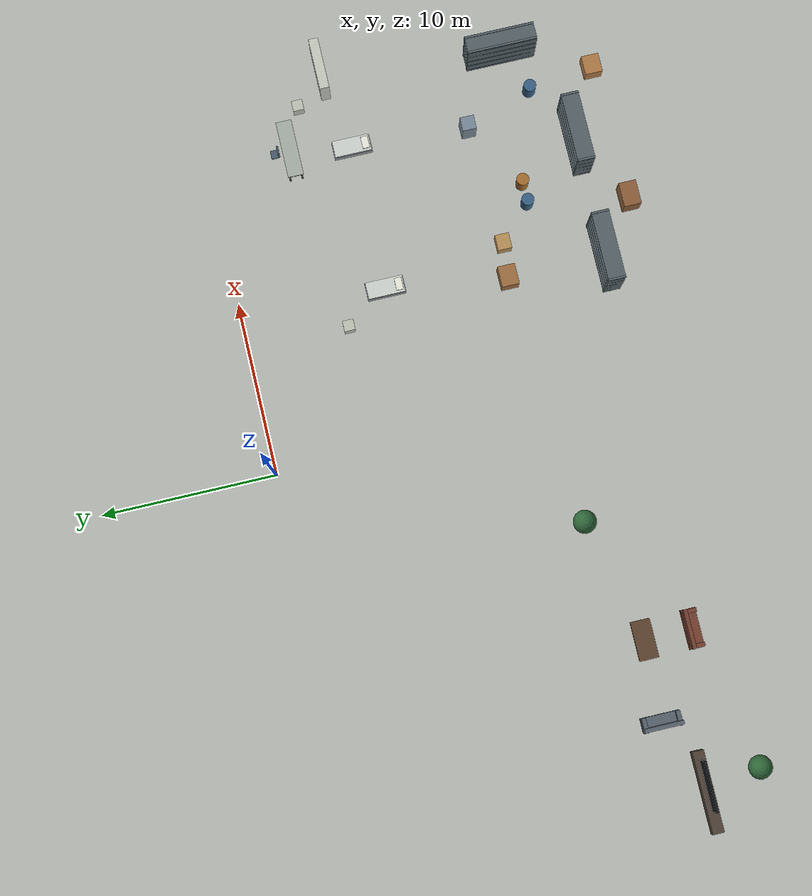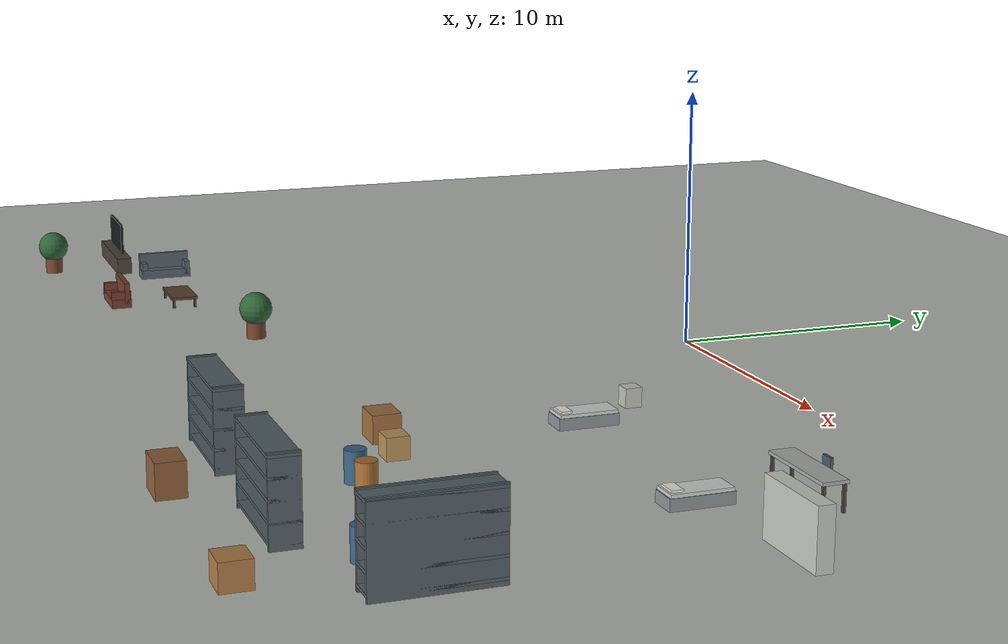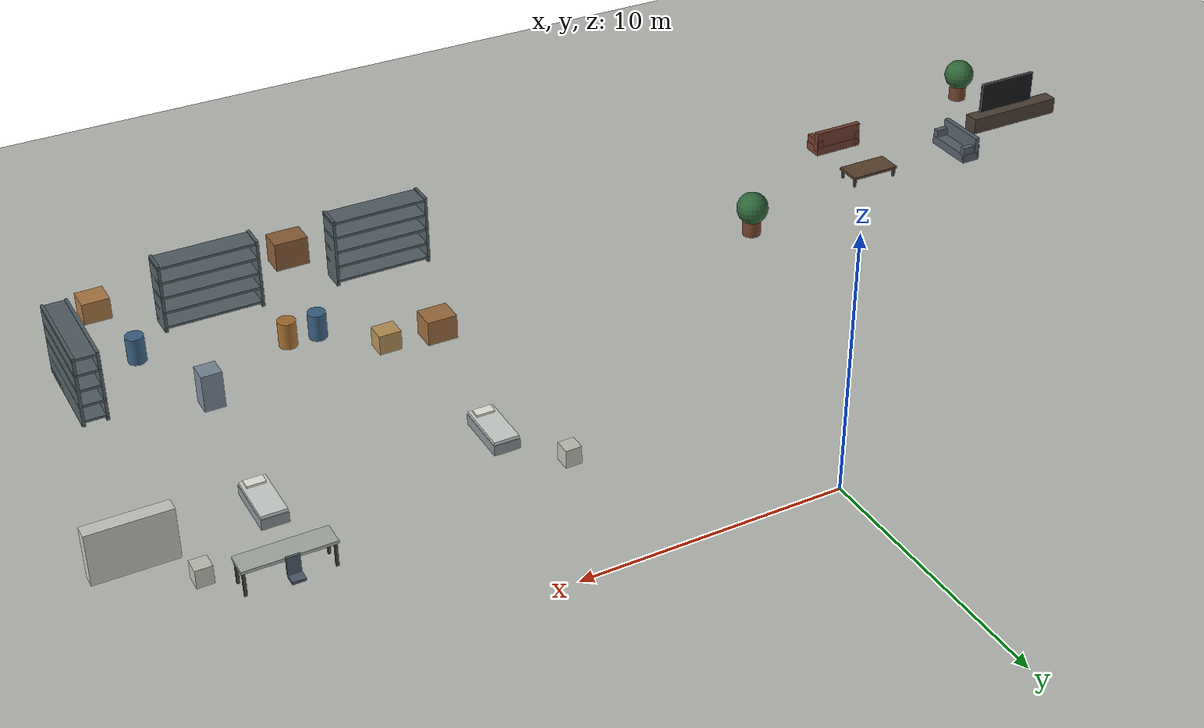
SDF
<sdf version="1.9">
 <world name="default">
  <model name="ground">
   <static>true</static>
   <link name="ground_link">
    <collision name="ground_collision">
     <geometry><plane><normal>0 0 1</normal><size>50 50</size></plane></geometry>
    </collision>
    <visual name="ground_visual">
     <geometry><plane><normal>0 0 1</normal><size>50 50</size></plane></geometry>
     <material><ambient>0.72 0.73 0.71 1</ambient><diffuse>0.72 0.73 0.71 1</diffuse></material>
    </visual>
   </link>
  </model>
  <model name="lounge_furniture">
   <static>true</static>
   <link name="lounge_sofa_a_seat">
    <pose>-13.500 -20.400 0.400 0 0 0.0000</pose>
    <collision name="collision"><geometry><box><size>2.200 0.820 0.380</size></box></geometry></collision>
    <visual name="visual">
     <geometry><box><size>2.200 0.820 0.380</size></box></geometry>
     <material><ambient>0.45 0.24 0.18 1</ambient><diffuse>0.45 0.24 0.18 1</diffuse></material>
    </visual>
   </link>
   <link name="lounge_sofa_a_back">
    <pose>-13.500 -20.150 0.830 0 0 0.0000</pose>
    <collision name="collision"><geometry><box><size>2.200 0.220 0.860</size></box></geometry></collision>
    <visual name="visual">
     <geometry><box><size>2.200 0.220 0.860</size></box></geometry>
     <material><ambient>0.45 0.24 0.18 1</ambient><diffuse>0.45 0.24 0.18 1</diffuse></material>
    </visual>
   </link>
   <link name="lounge_sofa_a_arm_l">
    <pose>-14.460 -20.400 0.620 0 0 0.0000</pose>
    <collision name="collision"><geometry><box><size>0.240 0.820 0.580</size></box></geometry></collision>
    <visual name="visual">
     <geometry><box><size>0.240 0.820 0.580</size></box></geometry>
     <material><ambient>0.45 0.24 0.18 1</ambient><diffuse>0.45 0.24 0.18 1</diffuse></material>
    </visual>
   </link>
   <link name="lounge_sofa_a_arm_r">
    <pose>-12.540 -20.400 0.620 0 0 0.0000</pose>
    <collision name="collision"><geometry><box><size>0.240 0.820 0.580</size></box></geometry></collision>
    <visual name="visual">
     <geometry><box><size>0.240 0.820 0.580</size></box></geometry>
     <material><ambient>0.45 0.24 0.18 1</ambient><diffuse>0.45 0.24 0.18 1</diffuse></material>
    </visual>
   </link>
   <link name="lounge_sofa_b_seat">
    <pose>-18.000 -17.500 0.400 0 0 1.5708</pose>
    <collision name="collision"><geometry><box><size>2.200 0.820 0.380</size></box></geometry></collision>
    <visual name="visual">
     <geometry><box><size>2.200 0.820 0.380</size></box></geometry>
     <material><ambient>0.34 0.38 0.42 1</ambient><diffuse>0.34 0.38 0.42 1</diffuse></material>
    </visual>
   </link>
   <link name="lounge_sofa_b_back">
    <pose>-18.250 -17.500 0.830 0 0 1.5708</pose>
    <collision name="collision"><geometry><box><size>2.200 0.220 0.860</size></box></geometry></collision>
    <visual name="visual">
     <geometry><box><size>2.200 0.220 0.860</size></box></geometry>
     <material><ambient>0.34 0.38 0.42 1</ambient><diffuse>0.34 0.38 0.42 1</diffuse></material>
    </visual>
   </link>
   <link name="lounge_sofa_b_arm_l">
    <pose>-18.000 -18.460 0.620 0 0 1.5708</pose>
    <collision name="collision"><geometry><box><size>0.240 0.820 0.580</size></box></geometry></collision>
    <visual name="visual">
     <geometry><box><size>0.240 0.820 0.580</size></box></geometry>
     <material><ambient>0.34 0.38 0.42 1</ambient><diffuse>0.34 0.38 0.42 1</diffuse></material>
    </visual>
   </link>
   <link name="lounge_sofa_b_arm_r">
    <pose>-18.000 -16.540 0.620 0 0 1.5708</pose>
    <collision name="collision"><geometry><box><size>0.240 0.820 0.580</size></box></geometry></collision>
    <visual name="visual">
     <geometry><box><size>0.240 0.820 0.580</size></box></geometry>
     <material><ambient>0.34 0.38 0.42 1</ambient><diffuse>0.34 0.38 0.42 1</diffuse></material>
    </visual>
   </link>
   <link name="lounge_coffee_table_top">
    <pose>-13.500 -17.700 0.420 0 0 0.0000</pose>
    <collision name="collision"><geometry><box><size>2.200 1.100 0.120</size></box></geometry></collision>
    <visual name="visual">
     <geometry><box><size>2.200 1.100 0.120</size></box></geometry>
     <material><ambient>0.36 0.26 0.18 1</ambient><diffuse>0.36 0.26 0.18 1</diffuse></material>
    </visual>
   </link>
   <link name="lounge_coffee_table_leg_0_0">
    <pose>-14.500 -18.150 0.180 0 0 0.0000</pose>
    <collision name="collision"><geometry><box><size>0.100 0.100 0.360</size></box></geometry></collision>
    <visual name="visual">
     <geometry><box><size>0.100 0.100 0.360</size></box></geometry>
     <material><ambient>0.30 0.28 0.25 1</ambient><diffuse>0.30 0.28 0.25 1</diffuse></material>
    </visual>
   </link>
   <link name="lounge_coffee_table_leg_0_1">
    <pose>-14.500 -17.250 0.180 0 0 0.0000</pose>
    <collision name="collision"><geometry><box><size>0.100 0.100 0.360</size></box></geometry></collision>
    <visual name="visual">
     <geometry><box><size>0.100 0.100 0.360</size></box></geometry>
     <material><ambient>0.30 0.28 0.25 1</ambient><diffuse>0.30 0.28 0.25 1</diffuse></material>
    </visual>
   </link>
   <link name="lounge_coffee_table_leg_1_0">
    <pose>-12.500 -18.150 0.180 0 0 0.0000</pose>
    <collision name="collision"><geometry><box><size>0.100 0.100 0.360</size></box></geometry></collision>
    <visual name="visual">
     <geometry><box><size>0.100 0.100 0.360</size></box></geometry>
     <material><ambient>0.30 0.28 0.25 1</ambient><diffuse>0.30 0.28 0.25 1</diffuse></material>
    </visual>
   </link>
   <link name="lounge_coffee_table_leg_1_1">
    <pose>-12.500 -17.250 0.180 0 0 0.0000</pose>
    <collision name="collision"><geometry><box><size>0.100 0.100 0.360</size></box></geometry></collision>
    <visual name="visual">
     <geometry><box><size>0.100 0.100 0.360</size></box></geometry>
     <material><ambient>0.30 0.28 0.25 1</ambient><diffuse>0.30 0.28 0.25 1</diffuse></material>
    </visual>
   </link>
   <link name="lounge_media_console">
    <pose>-22.200 -19.000 0.360 0 0 1.5708</pose>
    <collision name="collision"><geometry><box><size>0.650 4.500 0.720</size></box></geometry></collision>
    <visual name="visual">
     <geometry><box><size>0.650 4.500 0.720</size></box></geometry>
     <material><ambient>0.30 0.25 0.21 1</ambient><diffuse>0.30 0.25 0.21 1</diffuse></material>
    </visual>
   </link>
   <link name="lounge_screen">
    <pose>-21.800 -19.000 1.550 0 0 1.5708</pose>
    <collision name="collision"><geometry><box><size>0.120 2.800 1.350</size></box></geometry></collision>
    <visual name="visual">
     <geometry><box><size>0.120 2.800 1.350</size></box></geometry>
     <material><ambient>0.08 0.09 0.10 1</ambient><diffuse>0.08 0.09 0.10 1</diffuse></material>
    </visual>
   </link>
   <link name="lounge_planter_0">
    <pose>-6.500 -16.000 0.350 0 0 0.0000</pose>
    <collision name="collision">
     <geometry><cylinder><radius>0.380</radius><length>0.700</length></cylinder></geometry>
    </collision>
    <visual name="visual">
     <geometry><cylinder><radius>0.380</radius><length>0.700</length></cylinder></geometry>
     <material><ambient>0.45 0.26 0.17 1</ambient><diffuse>0.45 0.26 0.17 1</diffuse></material>
    </visual>
   </link>
   <link name="lounge_plant_0">
    <pose>-6.500 -16.000 1.200 0 0 0.0000</pose>
    <collision name="collision"><geometry><sphere><radius>0.660</radius></sphere></geometry></collision>
    <visual name="visual">
     <geometry><sphere><radius>0.660</radius></sphere></geometry>
     <material><ambient>0.18 0.40 0.22 1</ambient><diffuse>0.18 0.40 0.22 1</diffuse></material>
    </visual>
   </link>
   <link name="lounge_planter_1">
    <pose>-21.500 -22.000 0.350 0 0 0.0000</pose>
    <collision name="collision">
     <geometry><cylinder><radius>0.380</radius><length>0.700</length></cylinder></geometry>
    </collision>
    <visual name="visual">
     <geometry><cylinder><radius>0.380</radius><length>0.700</length></cylinder></geometry>
     <material><ambient>0.45 0.26 0.17 1</ambient><diffuse>0.45 0.26 0.17 1</diffuse></material>
    </visual>
   </link>
   <link name="lounge_plant_1">
    <pose>-21.500 -22.000 1.200 0 0 0.0000</pose>
    <collision name="collision"><geometry><sphere><radius>0.660</radius></sphere></geometry></collision>
    <visual name="visual">
     <geometry><sphere><radius>0.660</radius></sphere></geometry>
     <material><ambient>0.18 0.40 0.22 1</ambient><diffuse>0.18 0.40 0.22 1</diffuse></material>
    </visual>
   </link>
  </model>
  <model name="clinic_furniture">
   <static>true</static>
   <link name="clinic_bed_a_frame">
    <pose>9.000 -8.300 0.280 0 0 0.0000</pose>
    <collision name="collision"><geometry><box><size>1.000 2.200 0.420</size></box></geometry></collision>
    <visual name="visual">
     <geometry><box><size>1.000 2.200 0.420</size></box></geometry>
     <material><ambient>0.55 0.58 0.60 1</ambient><diffuse>0.55 0.58 0.60 1</diffuse></material>
    </visual>
   </link>
   <link name="clinic_bed_a_mattress">
    <pose>9.000 -8.300 0.530 0 0 0.0000</pose>
    <collision name="collision"><geometry><box><size>0.960 2.120 0.160</size></box></geometry></collision>
    <visual name="visual">
     <geometry><box><size>0.960 2.120 0.160</size></box></geometry>
     <material><ambient>0.82 0.84 0.82 1</ambient><diffuse>0.82 0.84 0.82 1</diffuse></material>
    </visual>
   </link>
   <link name="clinic_bed_a_pillow">
    <pose>9.000 -9.080 0.640 0 0 0.0000</pose>
    <collision name="collision"><geometry><box><size>0.700 0.400 0.100</size></box></geometry></collision>
    <visual name="visual">
     <geometry><box><size>0.700 0.400 0.100</size></box></geometry>
     <material><ambient>0.93 0.93 0.88 1</ambient><diffuse>0.93 0.93 0.88 1</diffuse></material>
    </visual>
   </link>
   <link name="clinic_bed_b_frame">
    <pose>17.500 -8.300 0.280 0 0 0.0000</pose>
    <collision name="collision"><geometry><box><size>1.000 2.200 0.420</size></box></geometry></collision>
    <visual name="visual">
     <geometry><box><size>1.000 2.200 0.420</size></box></geometry>
     <material><ambient>0.55 0.58 0.60 1</ambient><diffuse>0.55 0.58 0.60 1</diffuse></material>
    </visual>
   </link>
   <link name="clinic_bed_b_mattress">
    <pose>17.500 -8.300 0.530 0 0 0.0000</pose>
    <collision name="collision"><geometry><box><size>0.960 2.120 0.160</size></box></geometry></collision>
    <visual name="visual">
     <geometry><box><size>0.960 2.120 0.160</size></box></geometry>
     <material><ambient>0.82 0.84 0.82 1</ambient><diffuse>0.82 0.84 0.82 1</diffuse></material>
    </visual>
   </link>
   <link name="clinic_bed_b_pillow">
    <pose>17.500 -9.080 0.640 0 0 0.0000</pose>
    <collision name="collision"><geometry><box><size>0.700 0.400 0.100</size></box></geometry></collision>
    <visual name="visual">
     <geometry><box><size>0.700 0.400 0.100</size></box></geometry>
     <material><ambient>0.93 0.93 0.88 1</ambient><diffuse>0.93 0.93 0.88 1</diffuse></material>
    </visual>
   </link>
   <link name="clinic_supply_cabinet">
    <pose>22.200 -7.500 1.000 0 0 1.5708</pose>
    <collision name="collision"><geometry><box><size>0.550 3.000 2.000</size></box></geometry></collision>
    <visual name="visual">
     <geometry><box><size>0.550 3.000 2.000</size></box></geometry>
     <material><ambient>0.78 0.80 0.76 1</ambient><diffuse>0.78 0.80 0.76 1</diffuse></material>
    </visual>
   </link>
   <link name="clinic_reception_desk_top">
    <pose>18.000 -4.800 0.990 0 0 0.0000</pose>
    <collision name="collision"><geometry><box><size>3.300 0.900 0.120</size></box></geometry></collision>
    <visual name="visual">
     <geometry><box><size>3.300 0.900 0.120</size></box></geometry>
     <material><ambient>0.66 0.69 0.66 1</ambient><diffuse>0.66 0.69 0.66 1</diffuse></material>
    </visual>
   </link>
   <link name="clinic_reception_desk_leg_0_0">
    <pose>16.450 -5.150 0.465 0 0 0.0000</pose>
    <collision name="collision"><geometry><box><size>0.100 0.100 0.930</size></box></geometry></collision>
    <visual name="visual">
     <geometry><box><size>0.100 0.100 0.930</size></box></geometry>
     <material><ambient>0.30 0.28 0.25 1</ambient><diffuse>0.30 0.28 0.25 1</diffuse></material>
    </visual>
   </link>
   <link name="clinic_reception_desk_leg_0_1">
    <pose>16.450 -4.450 0.465 0 0 0.0000</pose>
    <collision name="collision"><geometry><box><size>0.100 0.100 0.930</size></box></geometry></collision>
    <visual name="visual">
     <geometry><box><size>0.100 0.100 0.930</size></box></geometry>
     <material><ambient>0.30 0.28 0.25 1</ambient><diffuse>0.30 0.28 0.25 1</diffuse></material>
    </visual>
   </link>
   <link name="clinic_reception_desk_leg_1_0">
    <pose>19.550 -5.150 0.465 0 0 0.0000</pose>
    <collision name="collision"><geometry><box><size>0.100 0.100 0.930</size></box></geometry></collision>
    <visual name="visual">
     <geometry><box><size>0.100 0.100 0.930</size></box></geometry>
     <material><ambient>0.30 0.28 0.25 1</ambient><diffuse>0.30 0.28 0.25 1</diffuse></material>
    </visual>
   </link>
   <link name="clinic_reception_desk_leg_1_1">
    <pose>19.550 -4.450 0.465 0 0 0.0000</pose>
    <collision name="collision"><geometry><box><size>0.100 0.100 0.930</size></box></geometry></collision>
    <visual name="visual">
     <geometry><box><size>0.100 0.100 0.930</size></box></geometry>
     <material><ambient>0.30 0.28 0.25 1</ambient><diffuse>0.30 0.28 0.25 1</diffuse></material>
    </visual>
   </link>
   <link name="clinic_chair_seat">
    <pose>18.000 -3.900 0.520 0 0 3.1416</pose>
    <collision name="collision"><geometry><box><size>0.480 0.460 0.100</size></box></geometry></collision>
    <visual name="visual">
     <geometry><box><size>0.480 0.460 0.100</size></box></geometry>
     <material><ambient>0.30 0.36 0.42 1</ambient><diffuse>0.30 0.36 0.42 1</diffuse></material>
    </visual>
   </link>
   <link name="clinic_chair_back">
    <pose>18.000 -4.120 0.910 0 0 3.1416</pose>
    <collision name="collision"><geometry><box><size>0.480 0.100 0.680</size></box></geometry></collision>
    <visual name="visual">
     <geometry><box><size>0.480 0.100 0.680</size></box></geometry>
     <material><ambient>0.30 0.36 0.42 1</ambient><diffuse>0.30 0.36 0.42 1</diffuse></material>
    </visual>
   </link>
   <link name="clinic_bedside_0">
    <pose>7.300 -5.800 0.360 0 0 0.0000</pose>
    <collision name="collision"><geometry><box><size>0.620 0.620 0.720</size></box></geometry></collision>
    <visual name="visual">
     <geometry><box><size>0.620 0.620 0.720</size></box></geometry>
     <material><ambient>0.76 0.77 0.72 1</ambient><diffuse>0.76 0.77 0.72 1</diffuse></material>
    </visual>
   </link>
   <link name="clinic_bedside_1">
    <pose>20.500 -5.800 0.360 0 0 0.0000</pose>
    <collision name="collision"><geometry><box><size>0.620 0.620 0.720</size></box></geometry></collision>
    <visual name="visual">
     <geometry><box><size>0.620 0.620 0.720</size></box></geometry>
     <material><ambient>0.76 0.77 0.72 1</ambient><diffuse>0.76 0.77 0.72 1</diffuse></material>
    </visual>
   </link>
  </model>
  <model name="warehouse_furniture">
   <static>true</static>
   <link name="warehouse_rack_0_shelf_0">
    <pose>8.000 -20.800 0.200 0 0 0.0000</pose>
    <collision name="collision"><geometry><box><size>4.000 1.000 0.100</size></box></geometry></collision>
    <visual name="visual">
     <geometry><box><size>4.000 1.000 0.100</size></box></geometry>
     <material><ambient>0.33 0.38 0.40 1</ambient><diffuse>0.33 0.38 0.40 1</diffuse></material>
    </visual>
   </link>
   <link name="warehouse_rack_0_shelf_1">
    <pose>8.000 -20.800 0.850 0 0 0.0000</pose>
    <collision name="collision"><geometry><box><size>4.000 1.000 0.100</size></box></geometry></collision>
    <visual name="visual">
     <geometry><box><size>4.000 1.000 0.100</size></box></geometry>
     <material><ambient>0.33 0.38 0.40 1</ambient><diffuse>0.33 0.38 0.40 1</diffuse></material>
    </visual>
   </link>
   <link name="warehouse_rack_0_shelf_2">
    <pose>8.000 -20.800 1.500 0 0 0.0000</pose>
    <collision name="collision"><geometry><box><size>4.000 1.000 0.100</size></box></geometry></collision>
    <visual name="visual">
     <geometry><box><size>4.000 1.000 0.100</size></box></geometry>
     <material><ambient>0.33 0.38 0.40 1</ambient><diffuse>0.33 0.38 0.40 1</diffuse></material>
    </visual>
   </link>
   <link name="warehouse_rack_0_shelf_3">
    <pose>8.000 -20.800 2.150 0 0 0.0000</pose>
    <collision name="collision"><geometry><box><size>4.000 1.000 0.100</size></box></geometry></collision>
    <visual name="visual">
     <geometry><box><size>4.000 1.000 0.100</size></box></geometry>
     <material><ambient>0.33 0.38 0.40 1</ambient><diffuse>0.33 0.38 0.40 1</diffuse></material>
    </visual>
   </link>
   <link name="warehouse_rack_0_shelf_4">
    <pose>8.000 -20.800 2.800 0 0 0.0000</pose>
    <collision name="collision"><geometry><box><size>4.000 1.000 0.100</size></box></geometry></collision>
    <visual name="visual">
     <geometry><box><size>4.000 1.000 0.100</size></box></geometry>
     <material><ambient>0.33 0.38 0.40 1</ambient><diffuse>0.33 0.38 0.40 1</diffuse></material>
    </visual>
   </link>
   <link name="warehouse_rack_0_side_0">
    <pose>6.060 -20.800 1.450 0 0 0.0000</pose>
    <collision name="collision"><geometry><box><size>0.120 1.000 2.900</size></box></geometry></collision>
    <visual name="visual">
     <geometry><box><size>0.120 1.000 2.900</size></box></geometry>
     <material><ambient>0.33 0.38 0.40 1</ambient><diffuse>0.33 0.38 0.40 1</diffuse></material>
    </visual>
   </link>
   <link name="warehouse_rack_0_side_1">
    <pose>9.940 -20.800 1.450 0 0 0.0000</pose>
    <collision name="collision"><geometry><box><size>0.120 1.000 2.900</size></box></geometry></collision>
    <visual name="visual">
     <geometry><box><size>0.120 1.000 2.900</size></box></geometry>
     <material><ambient>0.33 0.38 0.40 1</ambient><diffuse>0.33 0.38 0.40 1</diffuse></material>
    </visual>
   </link>
   <link name="warehouse_rack_1_shelf_0">
    <pose>15.000 -20.800 0.200 0 0 0.0000</pose>
    <collision name="collision"><geometry><box><size>4.000 1.000 0.100</size></box></geometry></collision>
    <visual name="visual">
     <geometry><box><size>4.000 1.000 0.100</size></box></geometry>
     <material><ambient>0.33 0.38 0.40 1</ambient><diffuse>0.33 0.38 0.40 1</diffuse></material>
    </visual>
   </link>
   <link name="warehouse_rack_1_shelf_1">
    <pose>15.000 -20.800 0.850 0 0 0.0000</pose>
    <collision name="collision"><geometry><box><size>4.000 1.000 0.100</size></box></geometry></collision>
    <visual name="visual">
     <geometry><box><size>4.000 1.000 0.100</size></box></geometry>
     <material><ambient>0.33 0.38 0.40 1</ambient><diffuse>0.33 0.38 0.40 1</diffuse></material>
    </visual>
   </link>
   <link name="warehouse_rack_1_shelf_2">
    <pose>15.000 -20.800 1.500 0 0 0.0000</pose>
    <collision name="collision"><geometry><box><size>4.000 1.000 0.100</size></box></geometry></collision>
    <visual name="visual">
     <geometry><box><size>4.000 1.000 0.100</size></box></geometry>
     <material><ambient>0.33 0.38 0.40 1</ambient><diffuse>0.33 0.38 0.40 1</diffuse></material>
    </visual>
   </link>
   <link name="warehouse_rack_1_shelf_3">
    <pose>15.000 -20.800 2.150 0 0 0.0000</pose>
    <collision name="collision"><geometry><box><size>4.000 1.000 0.100</size></box></geometry></collision>
    <visual name="visual">
     <geometry><box><size>4.000 1.000 0.100</size></box></geometry>
     <material><ambient>0.33 0.38 0.40 1</ambient><diffuse>0.33 0.38 0.40 1</diffuse></material>
    </visual>
   </link>
   <link name="warehouse_rack_1_shelf_4">
    <pose>15.000 -20.800 2.800 0 0 0.0000</pose>
    <collision name="collision"><geometry><box><size>4.000 1.000 0.100</size></box></geometry></collision>
    <visual name="visual">
     <geometry><box><size>4.000 1.000 0.100</size></box></geometry>
     <material><ambient>0.33 0.38 0.40 1</ambient><diffuse>0.33 0.38 0.40 1</diffuse></material>
    </visual>
   </link>
   <link name="warehouse_rack_1_side_0">
    <pose>13.060 -20.800 1.450 0 0 0.0000</pose>
    <collision name="collision"><geometry><box><size>0.120 1.000 2.900</size></box></geometry></collision>
    <visual name="visual">
     <geometry><box><size>0.120 1.000 2.900</size></box></geometry>
     <material><ambient>0.33 0.38 0.40 1</ambient><diffuse>0.33 0.38 0.40 1</diffuse></material>
    </visual>
   </link>
   <link name="warehouse_rack_1_side_1">
    <pose>16.940 -20.800 1.450 0 0 0.0000</pose>
    <collision name="collision"><geometry><box><size>0.120 1.000 2.900</size></box></geometry></collision>
    <visual name="visual">
     <geometry><box><size>0.120 1.000 2.900</size></box></geometry>
     <material><ambient>0.33 0.38 0.40 1</ambient><diffuse>0.33 0.38 0.40 1</diffuse></material>
    </visual>
   </link>
   <link name="warehouse_rack_2_shelf_0">
    <pose>21.000 -17.800 0.200 0 0 0.0000</pose>
    <collision name="collision"><geometry><box><size>1.000 4.000 0.100</size></box></geometry></collision>
    <visual name="visual">
     <geometry><box><size>1.000 4.000 0.100</size></box></geometry>
     <material><ambient>0.33 0.38 0.40 1</ambient><diffuse>0.33 0.38 0.40 1</diffuse></material>
    </visual>
   </link>
   <link name="warehouse_rack_2_shelf_1">
    <pose>21.000 -17.800 0.850 0 0 0.0000</pose>
    <collision name="collision"><geometry><box><size>1.000 4.000 0.100</size></box></geometry></collision>
    <visual name="visual">
     <geometry><box><size>1.000 4.000 0.100</size></box></geometry>
     <material><ambient>0.33 0.38 0.40 1</ambient><diffuse>0.33 0.38 0.40 1</diffuse></material>
    </visual>
   </link>
   <link name="warehouse_rack_2_shelf_2">
    <pose>21.000 -17.800 1.500 0 0 0.0000</pose>
    <collision name="collision"><geometry><box><size>1.000 4.000 0.100</size></box></geometry></collision>
    <visual name="visual">
     <geometry><box><size>1.000 4.000 0.100</size></box></geometry>
     <material><ambient>0.33 0.38 0.40 1</ambient><diffuse>0.33 0.38 0.40 1</diffuse></material>
    </visual>
   </link>
   <link name="warehouse_rack_2_shelf_3">
    <pose>21.000 -17.800 2.150 0 0 0.0000</pose>
    <collision name="collision"><geometry><box><size>1.000 4.000 0.100</size></box></geometry></collision>
    <visual name="visual">
     <geometry><box><size>1.000 4.000 0.100</size></box></geometry>
     <material><ambient>0.33 0.38 0.40 1</ambient><diffuse>0.33 0.38 0.40 1</diffuse></material>
    </visual>
   </link>
   <link name="warehouse_rack_2_shelf_4">
    <pose>21.000 -17.800 2.800 0 0 0.0000</pose>
    <collision name="collision"><geometry><box><size>1.000 4.000 0.100</size></box></geometry></collision>
    <visual name="visual">
     <geometry><box><size>1.000 4.000 0.100</size></box></geometry>
     <material><ambient>0.33 0.38 0.40 1</ambient><diffuse>0.33 0.38 0.40 1</diffuse></material>
    </visual>
   </link>
   <link name="warehouse_rack_2_side_0">
    <pose>20.560 -17.800 1.450 0 0 0.0000</pose>
    <collision name="collision"><geometry><box><size>0.120 4.000 2.900</size></box></geometry></collision>
    <visual name="visual">
     <geometry><box><size>0.120 4.000 2.900</size></box></geometry>
     <material><ambient>0.33 0.38 0.40 1</ambient><diffuse>0.33 0.38 0.40 1</diffuse></material>
    </visual>
   </link>
   <link name="warehouse_rack_2_side_1">
    <pose>21.440 -17.800 1.450 0 0 0.0000</pose>
    <collision name="collision"><geometry><box><size>0.120 4.000 2.900</size></box></geometry></collision>
    <visual name="visual">
     <geometry><box><size>0.120 4.000 2.900</size></box></geometry>
     <material><ambient>0.33 0.38 0.40 1</ambient><diffuse>0.33 0.38 0.40 1</diffuse></material>
    </visual>
   </link>
   <link name="warehouse_crate_0">
    <pose>8.000 -15.200 0.500 0 0 0.0000</pose>
    <collision name="collision"><geometry><box><size>1.200 1.000 1.000</size></box></geometry></collision>
    <visual name="visual">
     <geometry><box><size>1.200 1.000 1.000</size></box></geometry>
     <material><ambient>0.62 0.43 0.25 1</ambient><diffuse>0.62 0.43 0.25 1</diffuse></material>
    </visual>
   </link>
   <link name="warehouse_crate_1">
    <pose>10.000 -15.400 0.400 0 0 0.0000</pose>
    <collision name="collision"><geometry><box><size>0.900 0.800 0.800</size></box></geometry></collision>
    <visual name="visual">
     <geometry><box><size>0.900 0.800 0.800</size></box></geometry>
     <material><ambient>0.72 0.57 0.34 1</ambient><diffuse>0.72 0.57 0.34 1</diffuse></material>
    </visual>
   </link>
   <link name="warehouse_crate_2">
    <pose>17.000 -15.000 0.750 0 0 0.0000</pose>
    <collision name="collision"><geometry><box><size>0.800 0.800 1.500</size></box></geometry></collision>
    <visual name="visual">
     <geometry><box><size>0.800 0.800 1.500</size></box></geometry>
     <material><ambient>0.48 0.54 0.60 1</ambient><diffuse>0.48 0.54 0.60 1</diffuse></material>
    </visual>
   </link>
   <link name="warehouse_crate_3">
    <pose>19.000 -22.800 0.450 0 0 0.0000</pose>
    <collision name="collision"><geometry><box><size>1.100 1.000 0.900</size></box></geometry></collision>
    <visual name="visual">
     <geometry><box><size>1.100 1.000 0.900</size></box></geometry>
     <material><ambient>0.68 0.48 0.27 1</ambient><diffuse>0.68 0.48 0.27 1</diffuse></material>
    </visual>
   </link>
   <link name="warehouse_crate_4">
    <pose>11.000 -23.000 0.600 0 0 0.0000</pose>
    <collision name="collision"><geometry><box><size>1.400 1.000 1.200</size></box></geometry></collision>
    <visual name="visual">
     <geometry><box><size>1.400 1.000 1.200</size></box></geometry>
     <material><ambient>0.55 0.37 0.22 1</ambient><diffuse>0.55 0.37 0.22 1</diffuse></material>
    </visual>
   </link>
   <link name="warehouse_drum_0">
    <pose>12.000 -17.300 0.550 0 0 0.0000</pose>
    <collision name="collision">
     <geometry><cylinder><radius>0.360</radius><length>1.100</length></cylinder></geometry>
    </collision>
    <visual name="visual">
     <geometry><cylinder><radius>0.360</radius><length>1.100</length></cylinder></geometry>
     <material><ambient>0.22 0.38 0.52 1</ambient><diffuse>0.22 0.38 0.52 1</diffuse></material>
    </visual>
   </link>
   <link name="warehouse_drum_1">
    <pose>13.200 -17.300 0.550 0 0 0.0000</pose>
    <collision name="collision">
     <geometry><cylinder><radius>0.360</radius><length>1.100</length></cylinder></geometry>
    </collision>
    <visual name="visual">
     <geometry><cylinder><radius>0.360</radius><length>1.100</length></cylinder></geometry>
     <material><ambient>0.65 0.43 0.18 1</ambient><diffuse>0.65 0.43 0.18 1</diffuse></material>
    </visual>
   </link>
   <link name="warehouse_drum_2">
    <pose>18.500 -19.000 0.550 0 0 0.0000</pose>
    <collision name="collision">
     <geometry><cylinder><radius>0.360</radius><length>1.100</length></cylinder></geometry>
    </collision>
    <visual name="visual">
     <geometry><cylinder><radius>0.360</radius><length>1.100</length></cylinder></geometry>
     <material><ambient>0.22 0.38 0.52 1</ambient><diffuse>0.22 0.38 0.52 1</diffuse></material>
    </visual>
   </link>
  </model>
 </world>
</sdf>
